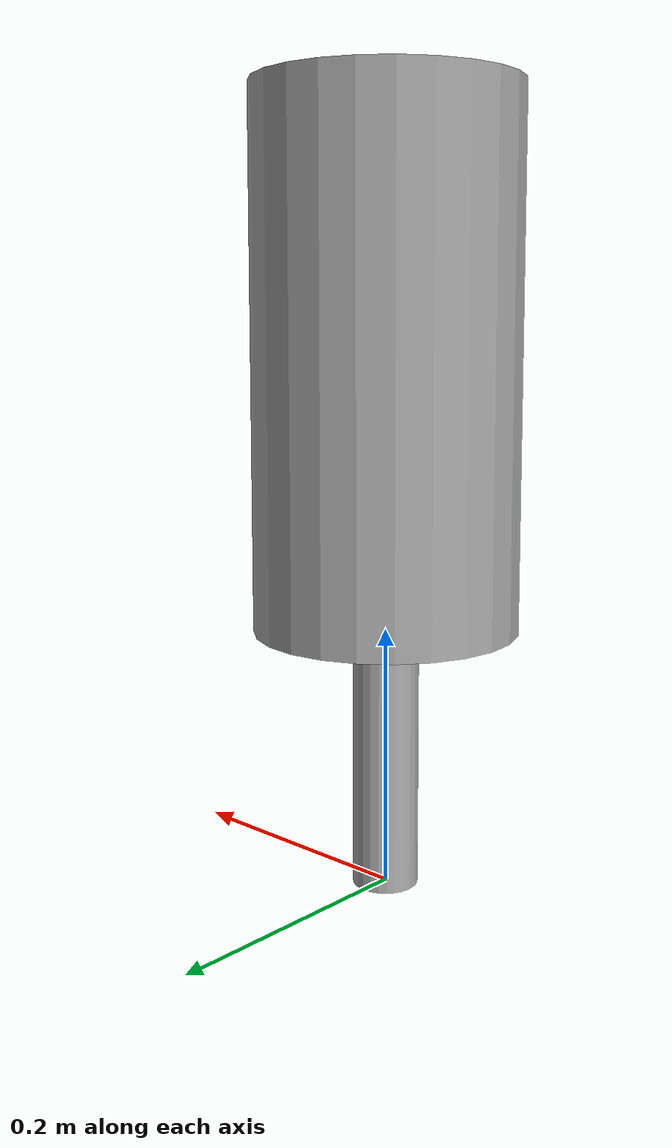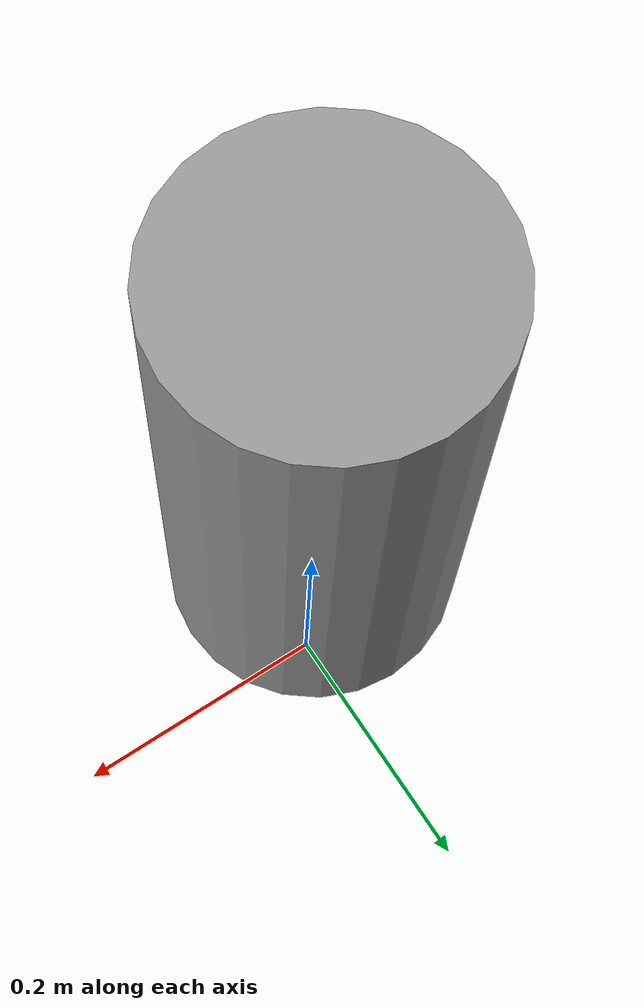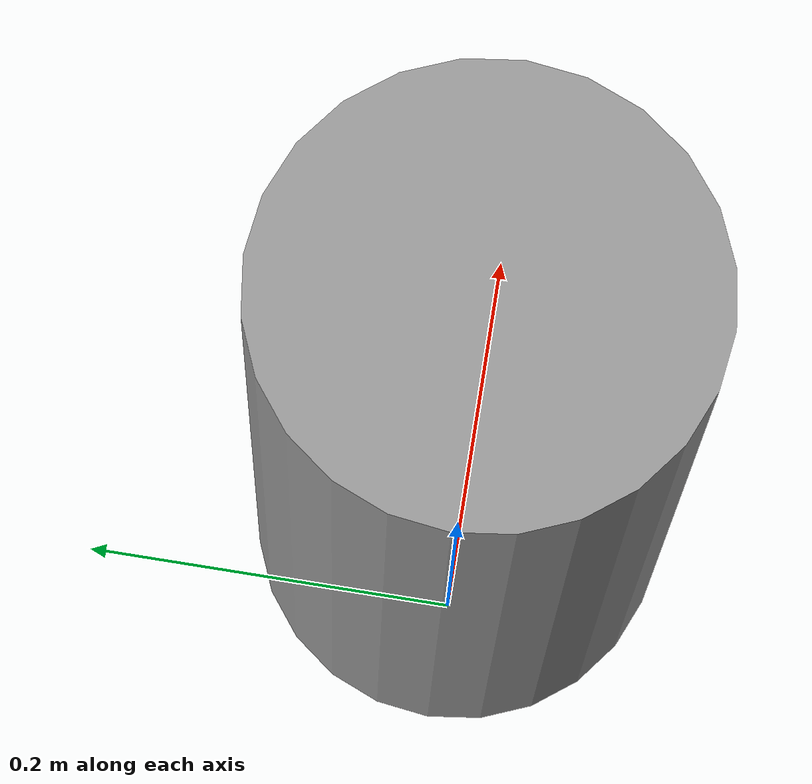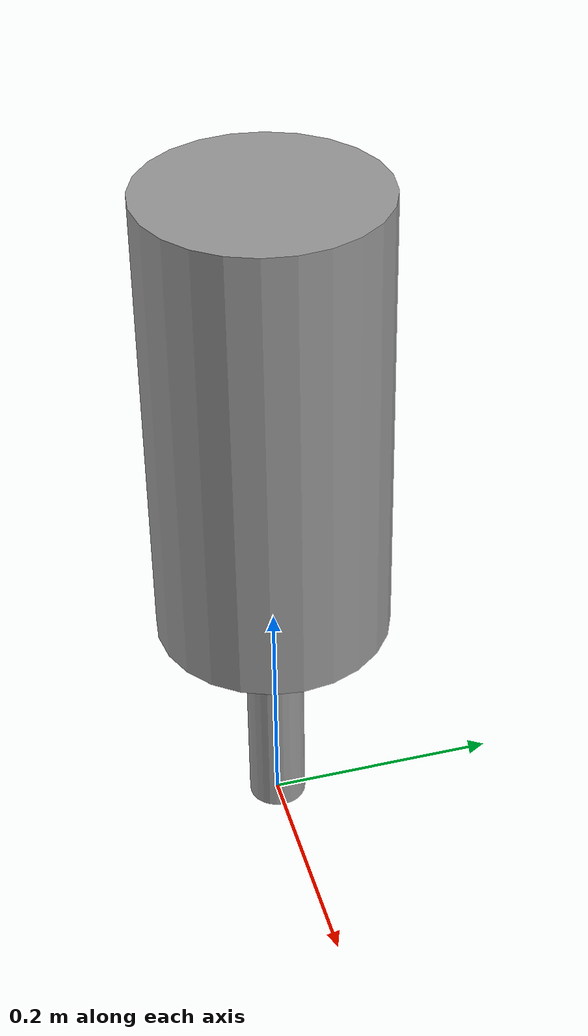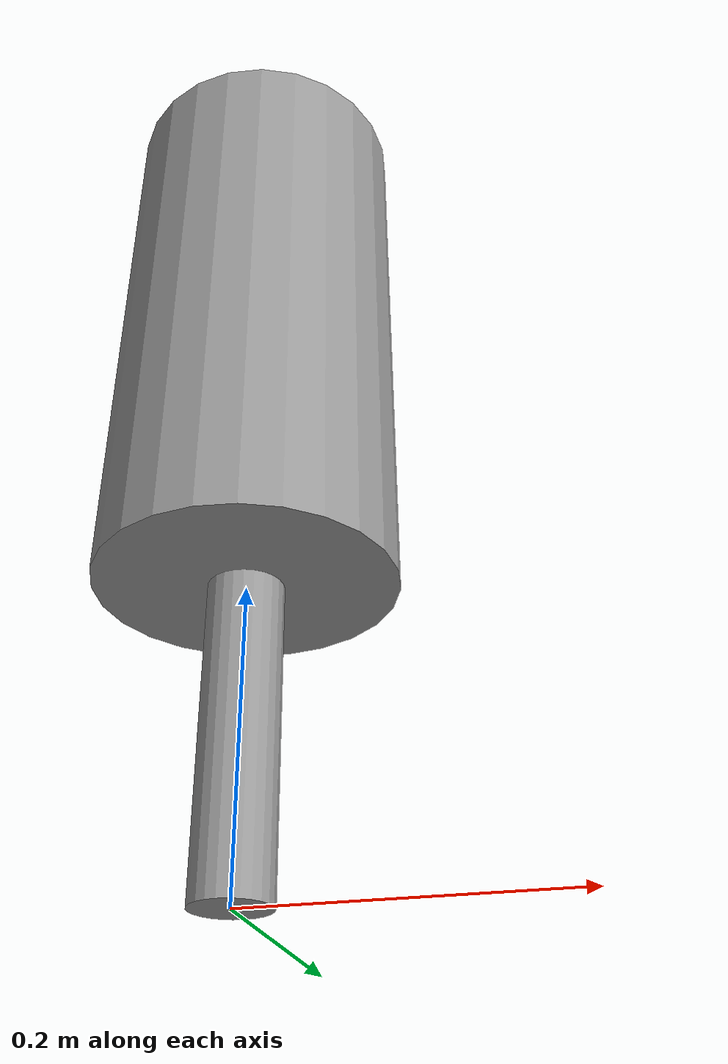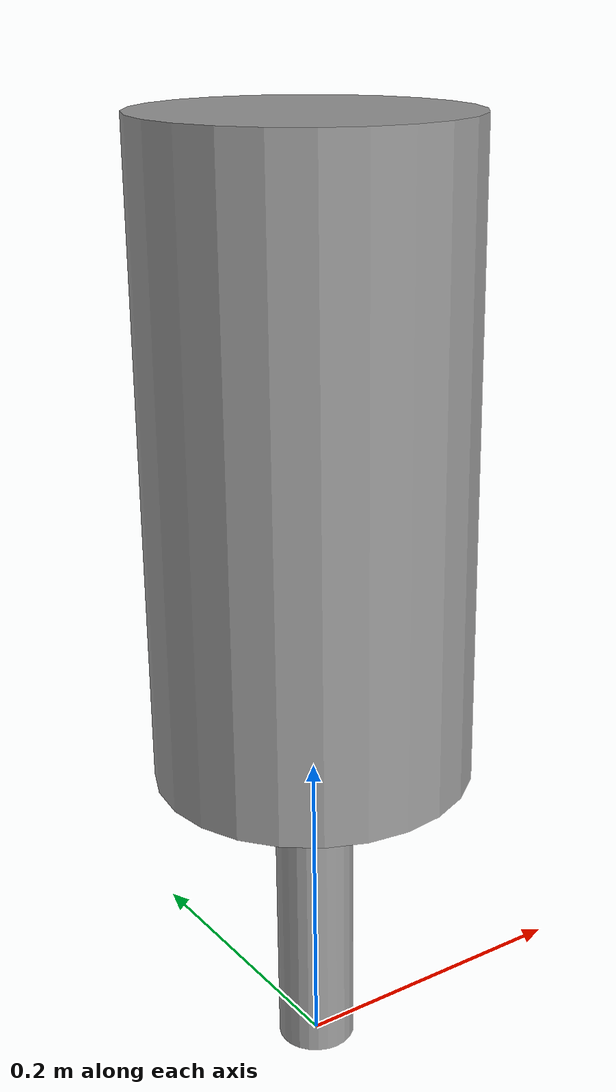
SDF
<?xml version='1.0'?>
<sdf version='1.7'>
  <model name='gazebo_rocket'>
    <link name='base_link'>
      <inertial>
        <mass>5.91092e-07</mass>
        <inertia>
          <ixx>8.48522e-09</ixx>
          <ixy>0</ixy>
          <ixz>0</ixz>
          <iyy>8.48522e-09</iyy>
          <iyz>0</iyz>
          <izz>8.23925e-10</izz>
        </inertia>
        <pose>0 0 0 0 -0 0</pose>
      </inertial>
      <pose>-0 -0 -0 0 -0 0</pose>
      <visual name='visual'>
        <pose>0 0 0.1 0 0 0</pose>
        <geometry>
          <cylinder>
            <radius>0.025</radius>
            <length>0.2</length>
          </cylinder>
        </geometry>
        <material>
          <lighting>1</lighting>
          <script>
            <uri>file://media/materials/scripts/gazebo.material</uri>
            <name>Gazebo/Grey</name>
          </script>
          <shader type='pixel' />
        </material>
        <transparency>0</transparency>
        <cast_shadows>1</cast_shadows>
      </visual>
      <collision name='collision'>
        <laser_retro>0</laser_retro>
        <max_contacts>10</max_contacts>
        <pose>0 0 0 0 -0 0</pose>
        <geometry>
          <cylinder>
            <radius>0.0528</radius>
            <length>0.404844</length>
          </cylinder>
        </geometry>
        <surface>
          <friction>
            <ode>
              <mu>1</mu>
              <mu2>1</mu2>
              <fdir1>0 0 0</fdir1>
              <slip1>0</slip1>
              <slip2>0</slip2>
            </ode>
            <torsional>
              <coefficient>1</coefficient>
              <patch_radius>0</patch_radius>
              <surface_radius>0</surface_radius>
              <use_patch_radius>1</use_patch_radius>
              <ode>
                <slip>0</slip>
              </ode>
            </torsional>
          </friction>
          <bounce>
            <restitution_coefficient>0</restitution_coefficient>
            <threshold>1e+06</threshold>
          </bounce>
          <contact>
            <collide_without_contact>0</collide_without_contact>
            <collide_without_contact_bitmask>1</collide_without_contact_bitmask>
            <collide_bitmask>1</collide_bitmask>
            <ode>
              <soft_cfm>0</soft_cfm>
              <soft_erp>0.2</soft_erp>
              <kp>1e+13</kp>
              <kd>1</kd>
              <max_vel>0.01</max_vel>
              <min_depth>0</min_depth>
            </ode>
            <bullet>
              <split_impulse>1</split_impulse>
              <split_impulse_penetration_threshold>-0.01</split_impulse_penetration_threshold>
              <soft_cfm>0</soft_cfm>
              <soft_erp>0.2</soft_erp>
              <kp>1e+13</kp>
              <kd>1</kd>
            </bullet>
          </contact>
        </surface>
      </collision>
    </link>

    <link name='virtual_gimbal_link'>
      <inertial>
        <mass>5.91092e-07</mass>
        <inertia>
          <ixx>8.48522e-09</ixx>
          <ixy>0</ixy>
          <ixz>0</ixz>
          <iyy>8.48522e-09</iyy>
          <iyz>0</iyz>
          <izz>8.23925e-10</izz>
        </inertia>
        <pose>0 0 0 0 -0 0</pose>
      </inertial>
      <pose>-0 -0 -0 0 -0 0</pose>
      <visual name='visual'>
        <pose>0 0 0.4 0 0 0</pose>
        <geometry>
          <box>
            <size>0.001 0.001 0.001</size>
          </box>
        </geometry>
        <material>
          <lighting>1</lighting>
          <script>
            <uri>file://media/materials/scripts/gazebo.material</uri>
            <name>Gazebo/Grey</name>
          </script>
          <shader type='pixel' />
        </material>
        <transparency>0</transparency>
        <cast_shadows>1</cast_shadows>
      </visual>
      <collision name='collision'>
        <laser_retro>0</laser_retro>
        <max_contacts>10</max_contacts>
        <pose>0 0 0 0 -0 0</pose>
        <geometry>
          <cylinder>
            <radius>0.0528</radius>
            <length>0.404844</length>
          </cylinder>
        </geometry>
        <surface>
          <friction>
            <ode>
              <mu>1</mu>
              <mu2>1</mu2>
              <fdir1>0 0 0</fdir1>
              <slip1>0</slip1>
              <slip2>0</slip2>
            </ode>
            <torsional>
              <coefficient>1</coefficient>
              <patch_radius>0</patch_radius>
              <surface_radius>0</surface_radius>
              <use_patch_radius>1</use_patch_radius>
              <ode>
                <slip>0</slip>
              </ode>
            </torsional>
          </friction>
          <bounce>
            <restitution_coefficient>0</restitution_coefficient>
            <threshold>1e+06</threshold>
          </bounce>
          <contact>
            <collide_without_contact>0</collide_without_contact>
            <collide_without_contact_bitmask>1</collide_without_contact_bitmask>
            <collide_bitmask>1</collide_bitmask>
            <ode>
              <soft_cfm>0</soft_cfm>
              <soft_erp>0.2</soft_erp>
              <kp>1e+13</kp>
              <kd>1</kd>
              <max_vel>0.01</max_vel>
              <min_depth>0</min_depth>
            </ode>
            <bullet>
              <split_impulse>1</split_impulse>
              <split_impulse_penetration_threshold>-0.01</split_impulse_penetration_threshold>
              <soft_cfm>0</soft_cfm>
              <soft_erp>0.2</soft_erp>
              <kp>1e+13</kp>
              <kd>1</kd>
            </bullet>
          </contact>
        </surface>
      </collision>
    </link>
    <link name='body'>
      <inertial>
        <mass>5.91092e-07</mass>
        <inertia>
          <ixx>8.48522e-09</ixx>
          <ixy>0</ixy>
          <ixz>0</ixz>
          <iyy>8.48522e-09</iyy>
          <iyz>0</iyz>
          <izz>8.23925e-10</izz>
        </inertia>
        <pose>0 0 0 0 -0 0</pose>
      </inertial>
      <pose>-0 -0 -0 0 -0 0</pose>
      <visual name='visual'>
        <pose>0 0 0.4 0 0 0</pose>
        <geometry>
          <cylinder>
            <radius>0.1</radius>
            <length>0.4</length>
          </cylinder>
        </geometry>
        <material>
          <lighting>1</lighting>
          <script>
            <uri>file://media/materials/scripts/gazebo.material</uri>
            <name>Gazebo/Grey</name>
          </script>
          <shader type='pixel' />
        </material>
        <transparency>0</transparency>
        <cast_shadows>1</cast_shadows>
      </visual>
      <collision name='collision'>
        <laser_retro>0</laser_retro>
        <max_contacts>10</max_contacts>
        <pose>0 0 0 0 -0 0</pose>
        <geometry>
          <cylinder>
            <radius>0.0528</radius>
            <length>0.404844</length>
          </cylinder>
        </geometry>
        <surface>
          <friction>
            <ode>
              <mu>1</mu>
              <mu2>1</mu2>
              <fdir1>0 0 0</fdir1>
              <slip1>0</slip1>
              <slip2>0</slip2>
            </ode>
            <torsional>
              <coefficient>1</coefficient>
              <patch_radius>0</patch_radius>
              <surface_radius>0</surface_radius>
              <use_patch_radius>1</use_patch_radius>
              <ode>
                <slip>0</slip>
              </ode>
            </torsional>
          </friction>
          <bounce>
            <restitution_coefficient>0</restitution_coefficient>
            <threshold>1e+06</threshold>
          </bounce>
          <contact>
            <collide_without_contact>0</collide_without_contact>
            <collide_without_contact_bitmask>1</collide_without_contact_bitmask>
            <collide_bitmask>1</collide_bitmask>
            <ode>
              <soft_cfm>0</soft_cfm>
              <soft_erp>0.2</soft_erp>
              <kp>1e+13</kp>
              <kd>1</kd>
              <max_vel>0.01</max_vel>
              <min_depth>0</min_depth>
            </ode>
            <bullet>
              <split_impulse>1</split_impulse>
              <split_impulse_penetration_threshold>-0.01</split_impulse_penetration_threshold>
              <soft_cfm>0</soft_cfm>
              <soft_erp>0.2</soft_erp>
              <kp>1e+13</kp>
              <kd>1</kd>
            </bullet>
          </contact>
        </surface>
      </collision>
    </link>
    <joint name="base_link_gimbal" type="revolute">
      <parent>base_link</parent>
      <child>body</child>
      <pose>0 0 0.2 0 0 0</pose>
      <axis>
        <xyz>0 0 1</xyz>
        <dynamics>
          <damping>0.1</damping>
          <friction>0.1</friction>
        </dynamics>
        <limit>
          <lower>-0.7</lower>
          <upper>0.7</upper>
          <effort>10</effort>
          <velocity>2.0</velocity>
        </limit>
      </axis>
    </joint>

    <plugin name='yo_sdf_joint_plugin' filename='libyo_sdf_joint_plugin.so'>
      <joints>base_link_gimbal</joints>
      <random_position>false</random_position>
    </plugin>

    <plugin name='imu_plugin' filename='libgazebo_ros_imu.so'>
      <alwaysOn>1</alwaysOn>
      <bodyName>body</bodyName>
      <topicName>imu</topicName>
      <serviceName>imu_service</serviceName>
      <gaussianNoise>0.0</gaussianNoise>
      <updateRate>20.0</updateRate>
    </plugin>

    <static>0</static>
    <allow_auto_disable>1</allow_auto_disable>
  </model>
</sdf>
